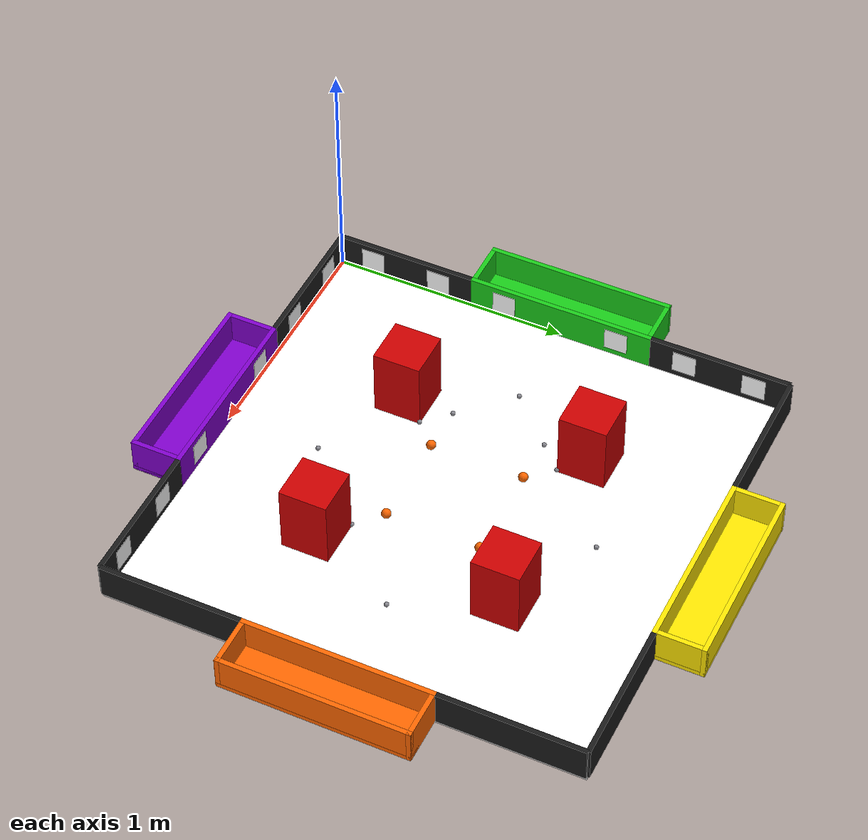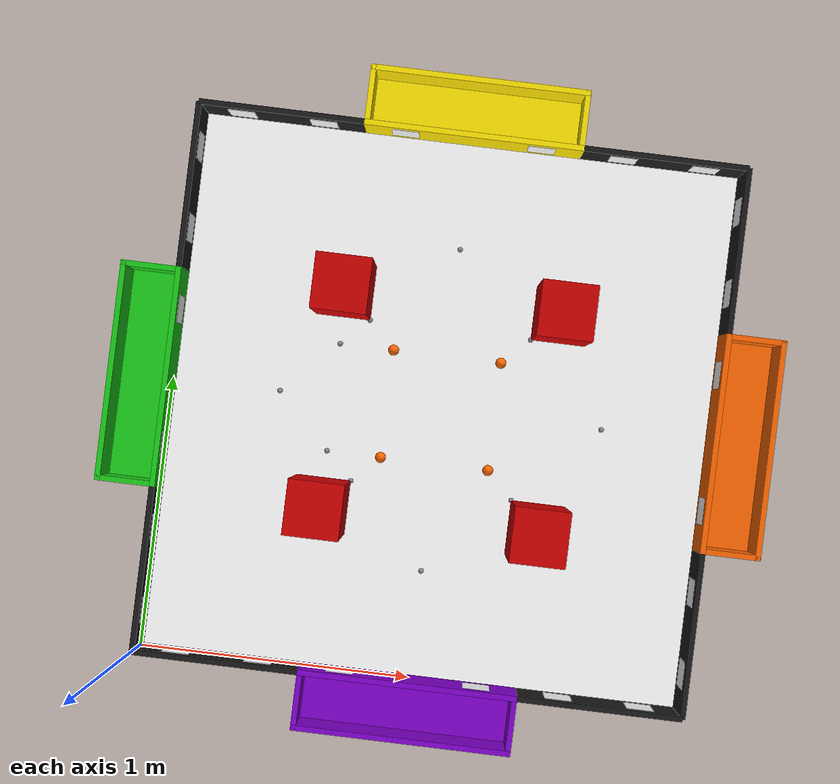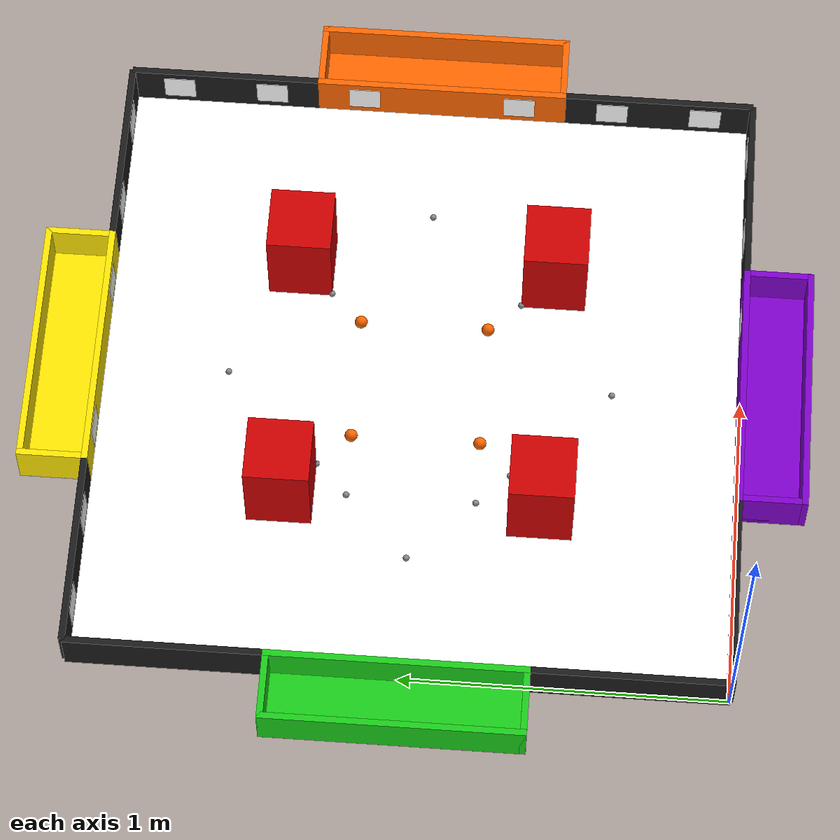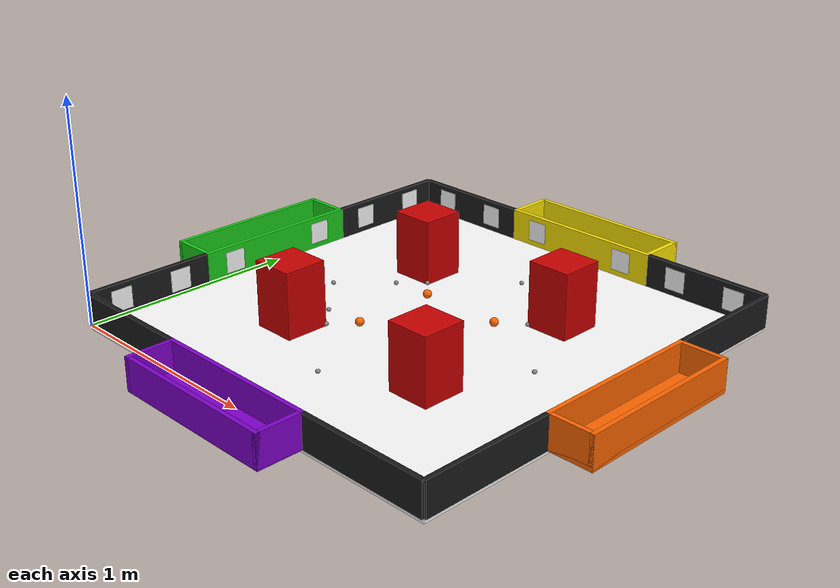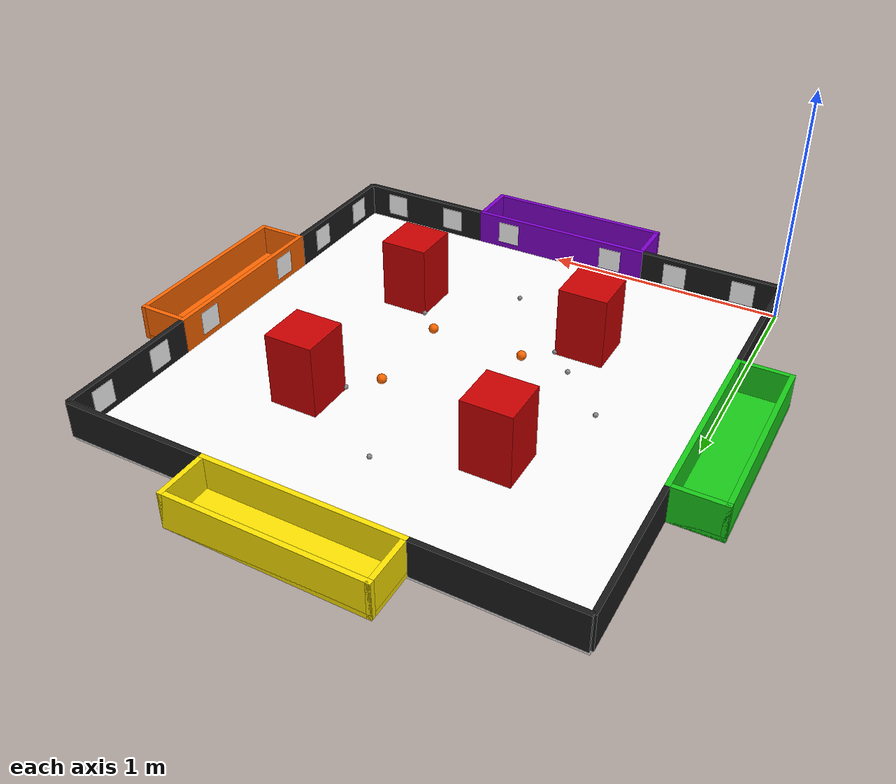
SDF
<?xml version="1.0" ?>
<sdf version="1.10">
  <world name="unibots_arena">

    <!-- GUI: start the camera zoomed onto the 2x2 m arena.                  -->
    <!-- The floor IS only 2x2 m; Gazebo's default infinite background grid  -->
    <!-- just makes it look small. Framing the camera on the arena centre    -->
    <!-- default config, so the standard view/control plugins are listed.)   -->
    <gui fullscreen="0">
      <plugin filename="MinimalScene" name="3D View">
        <gz-gui>
          <title>3D View</title>
          <property type="bool" key="showTitleBar">false</property>
          <property type="string" key="state">docked</property>
        </gz-gui>
        <engine>ogre2</engine>
        <scene>scene</scene>
        <ambient_light>0.6 0.6 0.6</ambient_light>
        <background_color>0.8 0.85 0.9</background_color>
        <!-- x y z roll pitch yaw: south of the arena, raised, looking N+down. -->
        <camera_pose>1.0 -1.6 1.7 0 0.62 1.5708</camera_pose>
      </plugin>
      <plugin filename="GzSceneManager" name="Scene Manager"/>
      <plugin filename="InteractiveViewControl" name="Interactive view control"/>
      <plugin filename="CameraTracking" name="Camera Tracking"/>
      <plugin filename="WorldControl" name="World control">
        <play_pause>true</play_pause>
        <step>true</step>
        <start_paused>false</start_paused>
        <use_event>true</use_event>
      </plugin>
    </gui>

    <!-- Core Gazebo systems (must be present for physics / sensors / GUI).  -->

    <!-- Rigid-body dynamics integrator. -->
    <plugin
      filename="gz-sim-physics-system"
      name="gz::sim::systems::Physics">
    </plugin>

    <!-- Handles user/service requests (spawn, remove, pose set, etc.).
         Required so the launch-time 'create' spawn request is serviced. -->
    <plugin
      filename="gz-sim-user-commands-system"
      name="gz::sim::systems::UserCommands">
    </plugin>

    <!-- Broadcasts world/scene state to the GUI and to ros_gz clients. -->
    <plugin
      filename="gz-sim-scene-broadcaster-system"
      name="gz::sim::systems::SceneBroadcaster">
    </plugin>

    <!-- Renders camera/depth/lidar sensors. ogre2 is the default high-quality
         render engine on Gazebo Harmonic. -->
    <plugin
      filename="gz-sim-sensors-system"
      name="gz::sim::systems::Sensors">
      <render_engine>ogre2</render_engine>
    </plugin>

    <!-- Physics settings.                                                   -->
    <!-- 1 ms step for stable small-object (ball/bearing) contacts. -->
    <physics name="ode_physics" type="ode">
      <max_step_size>0.001</max_step_size>
      <real_time_factor>1.0</real_time_factor>
      <real_time_update_rate>1000</real_time_update_rate>
    </physics>

    <!-- Standard Earth gravity (REP-103: z up). -->
    <gravity>0 0 -9.81</gravity>

    <!-- Scene / ambient lighting (indoor competition hall feel).            -->
    <scene>
      <ambient>0.6 0.6 0.6 1.0</ambient>
      <background>0.8 0.85 0.9 1.0</background>
      <shadows>true</shadows>
    </scene>

    <!-- Overhead sun-like directional light pointing straight down-ish. -->
    <light name="overhead_sun" type="directional">
      <cast_shadows>true</cast_shadows>
      <pose>1.0 1.0 5.0 0 0 0</pose>
      <diffuse>0.9 0.9 0.9 1.0</diffuse>
      <specular>0.3 0.3 0.3 1.0</specular>
      <attenuation>
        <range>50</range>
        <constant>0.9</constant>
        <linear>0.01</linear>
        <quadratic>0.001</quadratic>
      </attenuation>
      <!-- Slightly angled so walls cast soft shadows for visual depth. -->
      <direction>-0.2 -0.2 -1.0</direction>
    </light>

    <!-- Floor: white 2.0 x 2.0 m foam-tile plate.                           -->
    <model name="arena_floor">
      <static>true</static>
      <pose>1.0 1.0 0 0 0 0</pose>
      <link name="floor_link">
        <collision name="floor_collision">
          <geometry>
            <box>
              <!-- 2 m x 2 m floor, 0.02 m thick (top surface at z=0). -->
              <size>2.0 2.0 0.02</size>
            </box>
          </geometry>
          <pose>0 0 -0.01 0 0 0</pose>
          <surface>
            <friction>
              <ode>
                <!-- Foam tile is slippery: mu = mu2 = 0.5. -->
                <mu>0.5</mu>
                <mu2>0.5</mu2>
              </ode>
            </friction>
          </surface>
        </collision>
        <visual name="floor_visual">
          <geometry>
            <box>
              <size>2.0 2.0 0.02</size>
            </box>
          </geometry>
          <pose>0 0 -0.01 0 0 0</pose>
          <material>
            <!-- White floor. -->
            <ambient>0.9 0.9 0.9 1.0</ambient>
            <diffuse>1.0 1.0 1.0 1.0</diffuse>
            <specular>0.1 0.1 0.1 1.0</specular>
          </material>
        </visual>
      </link>
    </model>

    <!-- Perimeter walls (2.0 L x 0.15 H x 0.02 T).                          -->
    <!-- Wall centre z = 0.075 (half of 0.15 tall). Walls running along the  -->
    <!-- x axis (N/S) keep default orientation; walls running along the y    -->
    <!-- axis (E/W) are rotated 90 deg about z so their 2.0 m length is on y.-->

    <model name="perimeter_walls">
      <static>true</static>

      <link name="wall_north">
        <pose>1.0 2.0 0.075 0 0 0</pose>
        <collision name="col"><geometry><box><size>2.0 0.02 0.15</size></box></geometry></collision>

        <visual name="vis_left"><pose>-0.7 0 0 0 0 0</pose>
          <geometry><box><size>0.6 0.02 0.15</size></box></geometry>
          <material><ambient>0.1 0.1 0.1 1.0</ambient><diffuse>0.1 0.1 0.1 1.0</diffuse></material>
        </visual>

        <visual name="vis_center"><pose>0 0 0 0 0 0</pose>
          <geometry><box><size>0.8 0.02 0.15</size></box></geometry>
          <material><ambient>1.0 0.9 0.0 1.0</ambient><diffuse>1.0 0.9 0.0 1.0</diffuse></material>
        </visual>

        <visual name="vis_right"><pose>0.7 0 0 0 0 0</pose>
          <geometry><box><size>0.6 0.02 0.15</size></box></geometry>
          <material><ambient>0.1 0.1 0.1 1.0</ambient><diffuse>0.1 0.1 0.1 1.0</diffuse></material>
        </visual>

        <visual name="tag_0"><pose>-0.85 -0.011 0 0 0 0</pose><geometry><box><size>0.1 0.001 0.1</size></box></geometry><material><ambient>1 1 1 1</ambient><diffuse>1 1 1 1</diffuse></material></visual>
        <visual name="tag_1"><pose>-0.55 -0.011 0 0 0 0</pose><geometry><box><size>0.1 0.001 0.1</size></box></geometry><material><ambient>1 1 1 1</ambient><diffuse>1 1 1 1</diffuse></material></visual>
        <visual name="tag_2"><pose>-0.25 -0.011 0 0 0 0</pose><geometry><box><size>0.1 0.001 0.1</size></box></geometry><material><ambient>1 1 1 1</ambient><diffuse>1 1 1 1</diffuse></material></visual>
        <visual name="tag_3"><pose>0.25 -0.011 0 0 0 0</pose><geometry><box><size>0.1 0.001 0.1</size></box></geometry><material><ambient>1 1 1 1</ambient><diffuse>1 1 1 1</diffuse></material></visual>
        <visual name="tag_4"><pose>0.55 -0.011 0 0 0 0</pose><geometry><box><size>0.1 0.001 0.1</size></box></geometry><material><ambient>1 1 1 1</ambient><diffuse>1 1 1 1</diffuse></material></visual>
        <visual name="tag_5"><pose>0.85 -0.011 0 0 0 0</pose><geometry><box><size>0.1 0.001 0.1</size></box></geometry><material><ambient>1 1 1 1</ambient><diffuse>1 1 1 1</diffuse></material></visual>
      </link>

      <link name="wall_south">
        <pose>1.0 0.0 0.075 0 0 0</pose>
        <collision name="col"><geometry><box><size>2.0 0.02 0.15</size></box></geometry></collision>

        <visual name="vis_left"><pose>-0.7 0 0 0 0 0</pose>
          <geometry><box><size>0.6 0.02 0.15</size></box></geometry>
          <material><ambient>0.1 0.1 0.1 1.0</ambient><diffuse>0.1 0.1 0.1 1.0</diffuse></material>
        </visual>
        <visual name="vis_center"><pose>0 0 0 0 0 0</pose>
          <geometry><box><size>0.8 0.02 0.15</size></box></geometry>
          <material><ambient>0.5 0.0 0.8 1.0</ambient><diffuse>0.5 0.0 0.8 1.0</diffuse></material>
        </visual>
        <visual name="vis_right"><pose>0.7 0 0 0 0 0</pose>
          <geometry><box><size>0.6 0.02 0.15</size></box></geometry>
          <material><ambient>0.1 0.1 0.1 1.0</ambient><diffuse>0.1 0.1 0.1 1.0</diffuse></material>
        </visual>

        <visual name="tag_12"><pose>0.85 0.011 0 0 0 0</pose><geometry><box><size>0.1 0.001 0.1</size></box></geometry><material><ambient>1 1 1 1</ambient><diffuse>1 1 1 1</diffuse></material></visual>
        <visual name="tag_13"><pose>0.55 0.011 0 0 0 0</pose><geometry><box><size>0.1 0.001 0.1</size></box></geometry><material><ambient>1 1 1 1</ambient><diffuse>1 1 1 1</diffuse></material></visual>
        <visual name="tag_14"><pose>0.25 0.011 0 0 0 0</pose><geometry><box><size>0.1 0.001 0.1</size></box></geometry><material><ambient>1 1 1 1</ambient><diffuse>1 1 1 1</diffuse></material></visual>
        <visual name="tag_15"><pose>-0.25 0.011 0 0 0 0</pose><geometry><box><size>0.1 0.001 0.1</size></box></geometry><material><ambient>1 1 1 1</ambient><diffuse>1 1 1 1</diffuse></material></visual>
        <visual name="tag_16"><pose>-0.55 0.011 0 0 0 0</pose><geometry><box><size>0.1 0.001 0.1</size></box></geometry><material><ambient>1 1 1 1</ambient><diffuse>1 1 1 1</diffuse></material></visual>
        <visual name="tag_17"><pose>-0.85 0.011 0 0 0 0</pose><geometry><box><size>0.1 0.001 0.1</size></box></geometry><material><ambient>1 1 1 1</ambient><diffuse>1 1 1 1</diffuse></material></visual>
      </link>

      <link name="wall_east">
        <pose>2.0 1.0 0.075 0 0 1.57079632679</pose>
        <collision name="col"><geometry><box><size>2.0 0.02 0.15</size></box></geometry></collision>

        <visual name="vis_left"><pose>-0.7 0 0 0 0 0</pose>
          <geometry><box><size>0.6 0.02 0.15</size></box></geometry>
          <material><ambient>0.1 0.1 0.1 1.0</ambient><diffuse>0.1 0.1 0.1 1.0</diffuse></material>
        </visual>
        <visual name="vis_center"><pose>0 0 0 0 0 0</pose>
          <geometry><box><size>0.8 0.02 0.15</size></box></geometry>
          <material><ambient>1.0 0.4 0.0 1.0</ambient><diffuse>1.0 0.4 0.0 1.0</diffuse></material>
        </visual>
        <visual name="vis_right"><pose>0.7 0 0 0 0 0</pose>
          <geometry><box><size>0.6 0.02 0.15</size></box></geometry>
          <material><ambient>0.1 0.1 0.1 1.0</ambient><diffuse>0.1 0.1 0.1 1.0</diffuse></material>
        </visual>

        <visual name="tag_6"><pose>0.85 0.011 0 0 0 0</pose><geometry><box><size>0.1 0.001 0.1</size></box></geometry><material><ambient>1 1 1 1</ambient><diffuse>1 1 1 1</diffuse></material></visual>
        <visual name="tag_7"><pose>0.55 0.011 0 0 0 0</pose><geometry><box><size>0.1 0.001 0.1</size></box></geometry><material><ambient>1 1 1 1</ambient><diffuse>1 1 1 1</diffuse></material></visual>
        <visual name="tag_8"><pose>0.25 0.011 0 0 0 0</pose><geometry><box><size>0.1 0.001 0.1</size></box></geometry><material><ambient>1 1 1 1</ambient><diffuse>1 1 1 1</diffuse></material></visual>
        <visual name="tag_9"><pose>-0.25 0.011 0 0 0 0</pose><geometry><box><size>0.1 0.001 0.1</size></box></geometry><material><ambient>1 1 1 1</ambient><diffuse>1 1 1 1</diffuse></material></visual>
        <visual name="tag_10"><pose>-0.55 0.011 0 0 0 0</pose><geometry><box><size>0.1 0.001 0.1</size></box></geometry><material><ambient>1 1 1 1</ambient><diffuse>1 1 1 1</diffuse></material></visual>
        <visual name="tag_11"><pose>-0.85 0.011 0 0 0 0</pose><geometry><box><size>0.1 0.001 0.1</size></box></geometry><material><ambient>1 1 1 1</ambient><diffuse>1 1 1 1</diffuse></material></visual>
      </link>

      <link name="wall_west">
        <pose>0.0 1.0 0.075 0 0 1.57079632679</pose>
        <collision name="col"><geometry><box><size>2.0 0.02 0.15</size></box></geometry></collision>

        <visual name="vis_left"><pose>-0.7 0 0 0 0 0</pose>
          <geometry><box><size>0.6 0.02 0.15</size></box></geometry>
          <material><ambient>0.1 0.1 0.1 1.0</ambient><diffuse>0.1 0.1 0.1 1.0</diffuse></material>
        </visual>
        <visual name="vis_center"><pose>0 0 0 0 0 0</pose>
          <geometry><box><size>0.8 0.02 0.15</size></box></geometry>
          <material><ambient>0.1 0.8 0.1 1.0</ambient><diffuse>0.1 0.8 0.1 1.0</diffuse></material>
        </visual>
        <visual name="vis_right"><pose>0.7 0 0 0 0 0</pose>
          <geometry><box><size>0.6 0.02 0.15</size></box></geometry>
          <material><ambient>0.1 0.1 0.1 1.0</ambient><diffuse>0.1 0.1 0.1 1.0</diffuse></material>
        </visual>

        <visual name="tag_18"><pose>-0.85 -0.011 0 0 0 0</pose><geometry><box><size>0.1 0.001 0.1</size></box></geometry><material><ambient>1 1 1 1</ambient><diffuse>1 1 1 1</diffuse></material></visual>
        <visual name="tag_19"><pose>-0.55 -0.011 0 0 0 0</pose><geometry><box><size>0.1 0.001 0.1</size></box></geometry><material><ambient>1 1 1 1</ambient><diffuse>1 1 1 1</diffuse></material></visual>
        <visual name="tag_20"><pose>-0.25 -0.011 0 0 0 0</pose><geometry><box><size>0.1 0.001 0.1</size></box></geometry><material><ambient>1 1 1 1</ambient><diffuse>1 1 1 1</diffuse></material></visual>
        <visual name="tag_21"><pose>0.25 -0.011 0 0 0 0</pose><geometry><box><size>0.1 0.001 0.1</size></box></geometry><material><ambient>1 1 1 1</ambient><diffuse>1 1 1 1</diffuse></material></visual>
        <visual name="tag_22"><pose>0.55 -0.011 0 0 0 0</pose><geometry><box><size>0.1 0.001 0.1</size></box></geometry><material><ambient>1 1 1 1</ambient><diffuse>1 1 1 1</diffuse></material></visual>
        <visual name="tag_23"><pose>0.85 -0.011 0 0 0 0</pose><geometry><box><size>0.1 0.001 0.1</size></box></geometry><material><ambient>1 1 1 1</ambient><diffuse>1 1 1 1</diffuse></material></visual>
      </link>
    </model>

    <model name="net_north_yellow">
      <static>true</static>
      <pose>1.0 2.11 0 0 0 0</pose>
      <link name="base"><pose>0 0 0.01 0 0 0</pose><collision name="c"><geometry><box><size>0.8 0.2 0.02</size></box></geometry></collision><visual name="v"><geometry><box><size>0.8 0.2 0.02</size></box></geometry><material><ambient>1.0 0.9 0.0 1.0</ambient><diffuse>1.0 0.9 0.0 1.0</diffuse></material></visual></link>
      <link name="back"><pose>0 0.09 0.075 0 0 0</pose><collision name="c"><geometry><box><size>0.8 0.02 0.15</size></box></geometry></collision><visual name="v"><geometry><box><size>0.8 0.02 0.15</size></box></geometry><material><ambient>1.0 0.9 0.0 1.0</ambient><diffuse>1.0 0.9 0.0 1.0</diffuse></material></visual></link>
      <link name="left"><pose>-0.39 0 0.075 0 0 0</pose><collision name="c"><geometry><box><size>0.02 0.2 0.15</size></box></geometry></collision><visual name="v"><geometry><box><size>0.02 0.2 0.15</size></box></geometry><material><ambient>1.0 0.9 0.0 1.0</ambient><diffuse>1.0 0.9 0.0 1.0</diffuse></material></visual></link>
      <link name="right"><pose>0.39 0 0.075 0 0 0</pose><collision name="c"><geometry><box><size>0.02 0.2 0.15</size></box></geometry></collision><visual name="v"><geometry><box><size>0.02 0.2 0.15</size></box></geometry><material><ambient>1.0 0.9 0.0 1.0</ambient><diffuse>1.0 0.9 0.0 1.0</diffuse></material></visual></link>
    </model>

    <model name="net_south_purple">
      <static>true</static>
      <pose>1.0 -0.11 0 0 0 0</pose>
      <link name="base"><pose>0 0 0.01 0 0 0</pose><collision name="c"><geometry><box><size>0.8 0.2 0.02</size></box></geometry></collision><visual name="v"><geometry><box><size>0.8 0.2 0.02</size></box></geometry><material><ambient>0.5 0.0 0.8 1.0</ambient><diffuse>0.5 0.0 0.8 1.0</diffuse></material></visual></link>
      <link name="back"><pose>0 -0.09 0.075 0 0 0</pose><collision name="c"><geometry><box><size>0.8 0.02 0.15</size></box></geometry></collision><visual name="v"><geometry><box><size>0.8 0.02 0.15</size></box></geometry><material><ambient>0.5 0.0 0.8 1.0</ambient><diffuse>0.5 0.0 0.8 1.0</diffuse></material></visual></link>
      <link name="left"><pose>-0.39 0 0.075 0 0 0</pose><collision name="c"><geometry><box><size>0.02 0.2 0.15</size></box></geometry></collision><visual name="v"><geometry><box><size>0.02 0.2 0.15</size></box></geometry><material><ambient>0.5 0.0 0.8 1.0</ambient><diffuse>0.5 0.0 0.8 1.0</diffuse></material></visual></link>
      <link name="right"><pose>0.39 0 0.075 0 0 0</pose><collision name="c"><geometry><box><size>0.02 0.2 0.15</size></box></geometry></collision><visual name="v"><geometry><box><size>0.02 0.2 0.15</size></box></geometry><material><ambient>0.5 0.0 0.8 1.0</ambient><diffuse>0.5 0.0 0.8 1.0</diffuse></material></visual></link>
    </model>

    <model name="net_east_orange">
      <static>true</static>
      <pose>2.11 1.0 0 0 0 1.57079632679</pose>
      <link name="base"><pose>0 0 0.01 0 0 0</pose><collision name="c"><geometry><box><size>0.8 0.2 0.02</size></box></geometry></collision><visual name="v"><geometry><box><size>0.8 0.2 0.02</size></box></geometry><material><ambient>1.0 0.4 0.0 1.0</ambient><diffuse>1.0 0.4 0.0 1.0</diffuse></material></visual></link>
      <link name="back"><pose>0 -0.09 0.075 0 0 0</pose><collision name="c"><geometry><box><size>0.8 0.02 0.15</size></box></geometry></collision><visual name="v"><geometry><box><size>0.8 0.02 0.15</size></box></geometry><material><ambient>1.0 0.4 0.0 1.0</ambient><diffuse>1.0 0.4 0.0 1.0</diffuse></material></visual></link>
      <link name="left"><pose>-0.39 0 0.075 0 0 0</pose><collision name="c"><geometry><box><size>0.02 0.2 0.15</size></box></geometry></collision><visual name="v"><geometry><box><size>0.02 0.2 0.15</size></box></geometry><material><ambient>1.0 0.4 0.0 1.0</ambient><diffuse>1.0 0.4 0.0 1.0</diffuse></material></visual></link>
      <link name="right"><pose>0.39 0 0.075 0 0 0</pose><collision name="c"><geometry><box><size>0.02 0.2 0.15</size></box></geometry></collision><visual name="v"><geometry><box><size>0.02 0.2 0.15</size></box></geometry><material><ambient>1.0 0.4 0.0 1.0</ambient><diffuse>1.0 0.4 0.0 1.0</diffuse></material></visual></link>
    </model>

    <model name="net_west_green">
      <static>true</static>
      <pose>-0.11 1.0 0 0 0 1.57079632679</pose>
      <link name="base"><pose>0 0 0.01 0 0 0</pose><collision name="c"><geometry><box><size>0.8 0.2 0.02</size></box></geometry></collision><visual name="v"><geometry><box><size>0.8 0.2 0.02</size></box></geometry><material><ambient>0.1 0.8 0.1 1.0</ambient><diffuse>0.1 0.8 0.1 1.0</diffuse></material></visual></link>
      <link name="back"><pose>0 0.09 0.075 0 0 0</pose><collision name="c"><geometry><box><size>0.8 0.02 0.15</size></box></geometry></collision><visual name="v"><geometry><box><size>0.8 0.02 0.15</size></box></geometry><material><ambient>0.1 0.8 0.1 1.0</ambient><diffuse>0.1 0.8 0.1 1.0</diffuse></material></visual></link>
      <link name="left"><pose>-0.39 0 0.075 0 0 0</pose><collision name="c"><geometry><box><size>0.02 0.2 0.15</size></box></geometry></collision><visual name="v"><geometry><box><size>0.02 0.2 0.15</size></box></geometry><material><ambient>0.1 0.8 0.1 1.0</ambient><diffuse>0.1 0.8 0.1 1.0</diffuse></material></visual></link>
      <link name="right"><pose>0.39 0 0.075 0 0 0</pose><collision name="c"><geometry><box><size>0.02 0.2 0.15</size></box></geometry></collision><visual name="v"><geometry><box><size>0.02 0.2 0.15</size></box></geometry><material><ambient>0.1 0.8 0.1 1.0</ambient><diffuse>0.1 0.8 0.1 1.0</diffuse></material></visual></link>
    </model>

    <!-- Game objects: 16 orange ping-pong balls (r=0.02). z = 0.02 (resting  -->
    <!-- on floor surface at radius height).                                 -->
    <include><name>pp_1</name><uri>model://ping_pong_ball</uri><pose>0.8 0.8 0.02 0 0 0</pose></include>
    <include><name>pp_2</name><uri>model://ping_pong_ball</uri><pose>0.8 1.2 0.02 0 0 0</pose></include>
    <include><name>pp_3</name><uri>model://ping_pong_ball</uri><pose>1.2 0.8 0.02 0 0 0</pose></include>
    <include><name>pp_4</name><uri>model://ping_pong_ball</uri><pose>1.2 1.2 0.02 0 0 0</pose></include>

    <!-- Game objects: 24 grey steel bearings (r=0.01). z = 0.01 (resting on  -->
    <!-- floor surface at radius height).                                    -->
    <include><name>sb_1</name><uri>model://steel_bearing</uri><pose>0.7 0.7 0.01 0 0 0</pose></include>
    <include><name>sb_2</name><uri>model://steel_bearing</uri><pose>0.7 1.3 0.01 0 0 0</pose></include>
    <include><name>sb_3</name><uri>model://steel_bearing</uri><pose>1.3 0.7 0.01 0 0 0</pose></include>
    <include><name>sb_4</name><uri>model://steel_bearing</uri><pose>1.3 1.3 0.01 0 0 0</pose></include>
    <include><name>sb_5</name><uri>model://steel_bearing</uri><pose>0.4 1.0 0.01 0 0 0</pose></include>
    <include><name>sb_6</name><uri>model://steel_bearing</uri><pose>1.6 1.0 0.01 0 0 0</pose></include>
    <include><name>sb_7</name><uri>model://steel_bearing</uri><pose>1.0 0.4 0.01 0 0 0</pose></include>
    <include><name>sb_8</name><uri>model://steel_bearing</uri><pose>1.0 1.6 0.01 0 0 0</pose></include>
    <include><name>sb_9</name><uri>model://steel_bearing</uri><pose>0.6 0.8 0.01 0 0 0</pose></include>
    <include><name>sb_10</name><uri>model://steel_bearing</uri><pose>0.6 1.2 0.01 0 0 0</pose></include>

  <!-- Mock Opponent 1: Bottom-Left -->
    <model name="mock_obstacle_1">
      <static>true</static>
      <pose>0.6 0.6 0.15 0 0 0</pose>
      <link name="link">
        <collision name="collision">
          <geometry><box><size>0.2 0.2 0.3</size></box></geometry>
        </collision>
        <visual name="visual">
          <geometry><box><size>0.2 0.2 0.3</size></box></geometry>
          <material><ambient>0.8 0 0 1</ambient><diffuse>0.8 0 0 1</diffuse></material>
        </visual>
      </link>
    </model>

    <!-- Mock Opponent 2: Bottom-Right -->
    <model name="mock_obstacle_2">
      <static>true</static>
      <pose>1.4 0.6 0.15 0 0 0</pose>
      <link name="link">
        <collision name="collision">
          <geometry><box><size>0.2 0.2 0.3</size></box></geometry>
        </collision>
        <visual name="visual">
          <geometry><box><size>0.2 0.2 0.3</size></box></geometry>
          <material><ambient>0.8 0 0 1</ambient><diffuse>0.8 0 0 1</diffuse></material>
        </visual>
      </link>
    </model>

    <!-- Mock Opponent 3: Top-Left -->
    <model name="mock_obstacle_3">
      <static>true</static>
      <pose>0.6 1.4 0.15 0 0 0</pose>
      <link name="link">
        <collision name="collision">
          <geometry><box><size>0.2 0.2 0.3</size></box></geometry>
        </collision>
        <visual name="visual">
          <geometry><box><size>0.2 0.2 0.3</size></box></geometry>
          <material><ambient>0.8 0 0 1</ambient><diffuse>0.8 0 0 1</diffuse></material>
        </visual>
      </link>
    </model>

    <!-- Mock Opponent 4: Top-Right -->
    <model name="mock_obstacle_4">
      <static>true</static>
      <pose>1.4 1.4 0.15 0 0 0</pose>
      <link name="link">
        <collision name="collision">
          <geometry><box><size>0.2 0.2 0.3</size></box></geometry>
        </collision>
        <visual name="visual">
          <geometry><box><size>0.2 0.2 0.3</size></box></geometry>
          <material><ambient>0.8 0 0 1</ambient><diffuse>0.8 0 0 1</diffuse></material>
        </visual>
      </link>
    </model>
  </world>
</sdf>

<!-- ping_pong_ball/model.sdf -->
<sdf version="1.10">
  <model name="ping_pong_ball">
    <link name="ball_link">
      <inertial>
        <mass>0.0027</mass>
        <inertia>
          <ixx>4.32e-07</ixx>
          <ixy>0.0</ixy>
          <ixz>0.0</ixz>
          <iyy>4.32e-07</iyy>
          <iyz>0.0</iyz>
          <izz>4.32e-07</izz>
        </inertia>
      </inertial>

      <collision name="collision">
        <geometry>
          <sphere>
            <radius>0.02</radius>
          </sphere>
        </geometry>
        <surface>
          <friction>
            <ode>
              <!-- Light plastic ball: low-to-moderate friction. -->
              <mu>0.4</mu>
              <mu2>0.4</mu2>
            </ode>
          </friction>
          <bounce>
            <!-- Ping-pong balls are bouncy. -->
            <restitution_coefficient>0.8</restitution_coefficient>
            <threshold>0.01</threshold>
          </bounce>
          <contact>
            <ode>
              <kp>100000.0</kp>
              <kd>1.0</kd>
            </ode>
          </contact>
        </surface>
      </collision>

      <visual name="visual">
        <geometry>
          <sphere>
            <radius>0.02</radius>
          </sphere>
        </geometry>
        <material>
          <!-- Orange RGB(1.0, 0.4, 0.0). -->
          <ambient>1.0 0.4 0.0 1.0</ambient>
          <diffuse>1.0 0.4 0.0 1.0</diffuse>
          <specular>0.2 0.2 0.2 1.0</specular>
        </material>
      </visual>
    </link>
  </model>
</sdf>

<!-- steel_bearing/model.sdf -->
<sdf version="1.10">
  <model name="steel_bearing">
    <link name="bearing_link">
      <inertial>
        <mass>0.034</mass>
        <inertia>
          <ixx>1.36e-06</ixx>
          <ixy>0.0</ixy>
          <ixz>0.0</ixz>
          <iyy>1.36e-06</iyy>
          <iyz>0.0</iyz>
          <izz>1.36e-06</izz>
        </inertia>
      </inertial>

      <collision name="collision">
        <geometry>
          <sphere>
            <radius>0.01</radius>
          </sphere>
        </geometry>
        <surface>
          <friction>
            <ode>
              <!-- Steel-on-foam: high friction so it does not skate around. -->
              <mu>1.0</mu>
              <mu2>1.0</mu2>
            </ode>
          </friction>
          <bounce>
            <!-- Dense steel: low restitution. -->
            <restitution_coefficient>0.2</restitution_coefficient>
            <threshold>0.01</threshold>
          </bounce>
          <contact>
            <ode>
              <kp>1000000.0</kp>
              <kd>10.0</kd>
            </ode>
          </contact>
        </surface>
      </collision>

      <visual name="visual">
        <geometry>
          <sphere>
            <radius>0.01</radius>
          </sphere>
        </geometry>
        <material>
          <!-- Brushed-steel grey with a metallic specular highlight. -->
          <ambient>0.4 0.4 0.42 1.0</ambient>
          <diffuse>0.55 0.55 0.58 1.0</diffuse>
          <specular>0.8 0.8 0.8 1.0</specular>
        </material>
      </visual>
    </link>
  </model>
</sdf>
